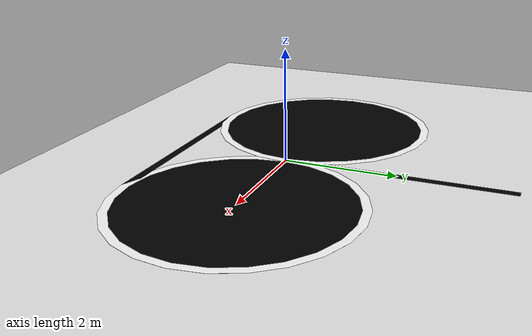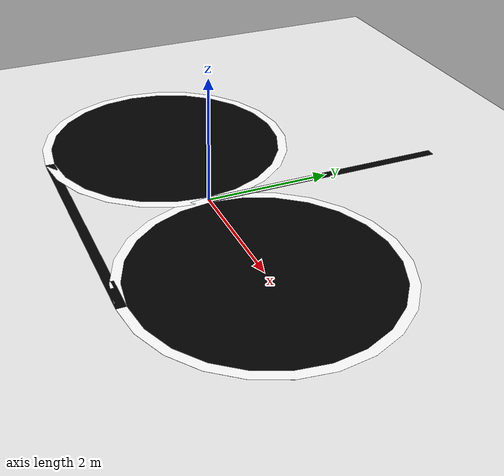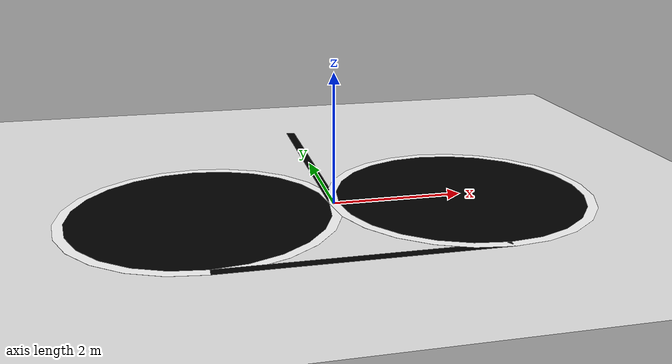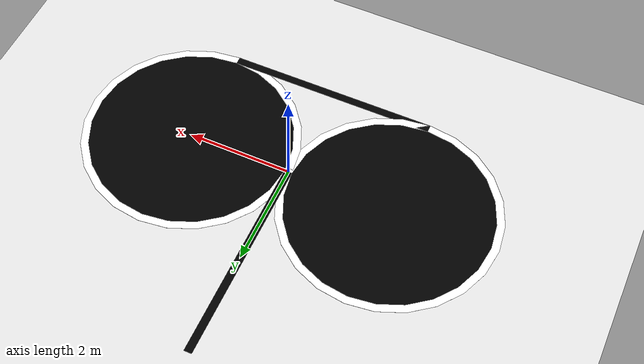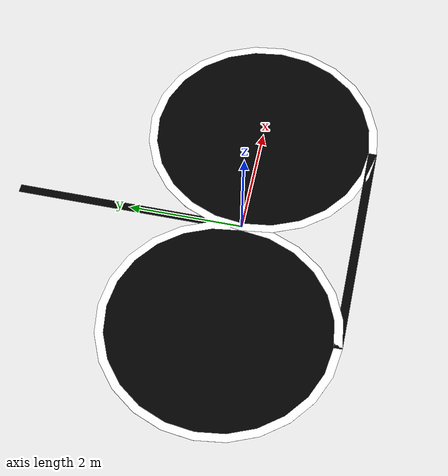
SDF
<?xml version="1.0"?>
<sdf version="1.6">
  <world name="advanced_line_world">

    <!-- Lumière du soleil -->
    <include>
      <uri>model://sun</uri>
    </include>

    <!-- Sol blanc -->
    <model name="ground_plane">
      <static>true</static>
      <link name="link">
        <collision name="collision">
          <geometry>
            <plane>
              <normal>0 0 1</normal>
              <size>30 30</size>
            </plane>
          </geometry>
        </collision>
        <visual name="visual">
          <geometry>
            <plane>
              <normal>0 0 1</normal>
              <size>30 30</size>
            </plane>
          </geometry>
          <material>
            <script>
              <uri>file://media/materials/scripts/gazebo.material</uri>
              <name>Gazebo/White</name>
            </script>
          </material>
        </visual>
      </link>
    </model>

    <!-- Circuit : Ligne droite 1 (départ) -->
    <model name="line_1">
      <static>true</static>
      <pose>0 -2 0.001 0 0 0</pose>
      <link name="link">
        <visual name="visual">
          <geometry>
            <box>
              <size>4 0.15 0.001</size>
            </box>
          </geometry>
          <material>
            <ambient>0 0 0 1</ambient>
            <diffuse>0 0 0 1</diffuse>
          </material>
        </visual>
      </link>
    </model>

    <!-- Virage 1 (courbe droite) -->
    <model name="curve_1">
      <static>true</static>
      <pose>2 0 0.001 0 0 0</pose>
      <link name="link">
        <visual name="visual">
          <geometry>
            <cylinder>
              <radius>2.075</radius>
              <length>0.001</length>
            </cylinder>
          </geometry>
          <material>
            <ambient>1 1 1 1</ambient>
            <diffuse>1 1 1 1</diffuse>
          </material>
        </visual>
        <visual name="visual_inner">
          <geometry>
            <cylinder>
              <radius>1.925</radius>
              <length>0.002</length>
            </cylinder>
          </geometry>
          <material>
            <ambient>0 0 0 1</ambient>
            <diffuse>0 0 0 1</diffuse>
          </material>
        </visual>
      </link>
    </model>

    <!-- Ligne droite 2 (en haut) -->
    <model name="line_2">
      <static>true</static>
      <pose>0 2 0.001 0 0 1.5708</pose>
      <link name="link">
        <visual name="visual">
          <geometry>
            <box>
              <size>4 0.15 0.001</size>
            </box>
          </geometry>
          <material>
            <ambient>0 0 0 1</ambient>
            <diffuse>0 0 0 1</diffuse>
          </material>
        </visual>
      </link>
    </model>

    <!-- Virage 2 (courbe gauche) -->
    <model name="curve_2">
      <static>true</static>
      <pose>-2 0 0.001 0 0 0</pose>
      <link name="link">
        <visual name="visual">
          <geometry>
            <cylinder>
              <radius>2.075</radius>
              <length>0.001</length>
            </cylinder>
          </geometry>
          <material>
            <ambient>1 1 1 1</ambient>
            <diffuse>1 1 1 1</diffuse>
          </material>
        </visual>
        <visual name="visual_inner">
          <geometry>
            <cylinder>
              <radius>1.925</radius>
              <length>0.002</length>
            </cylinder>
          </geometry>
          <material>
            <ambient>0 0 0 1</ambient>
            <diffuse>0 0 0 1</diffuse>
          </material>
        </visual>
      </link>
    </model>

  </world>
</sdf>
